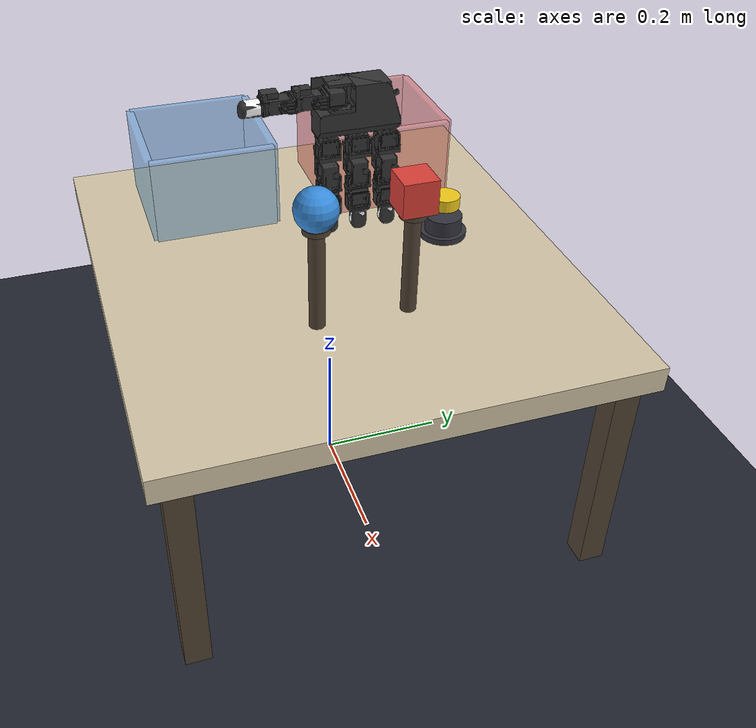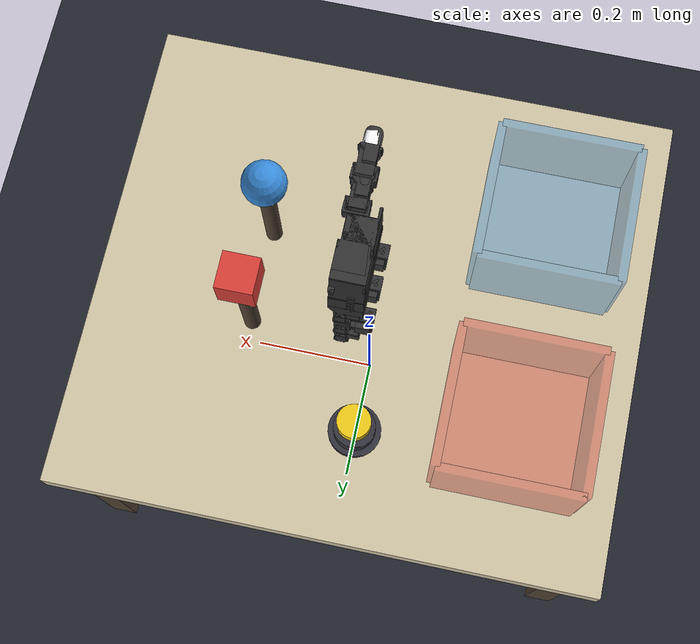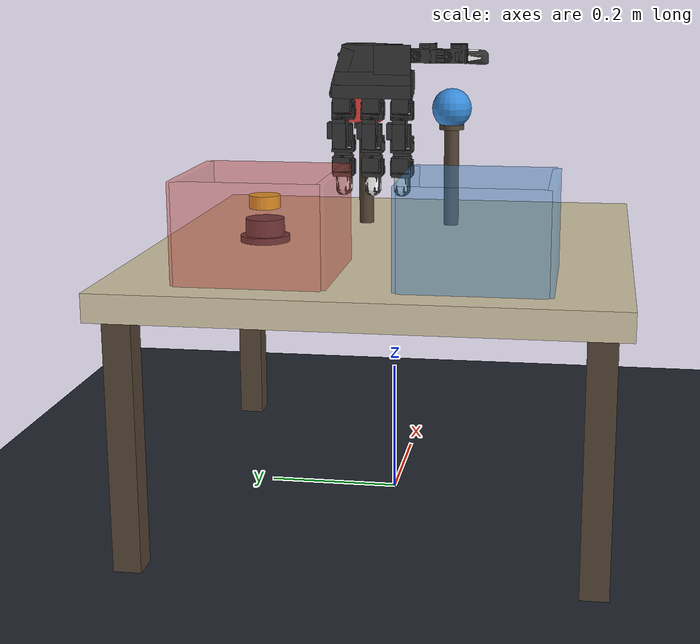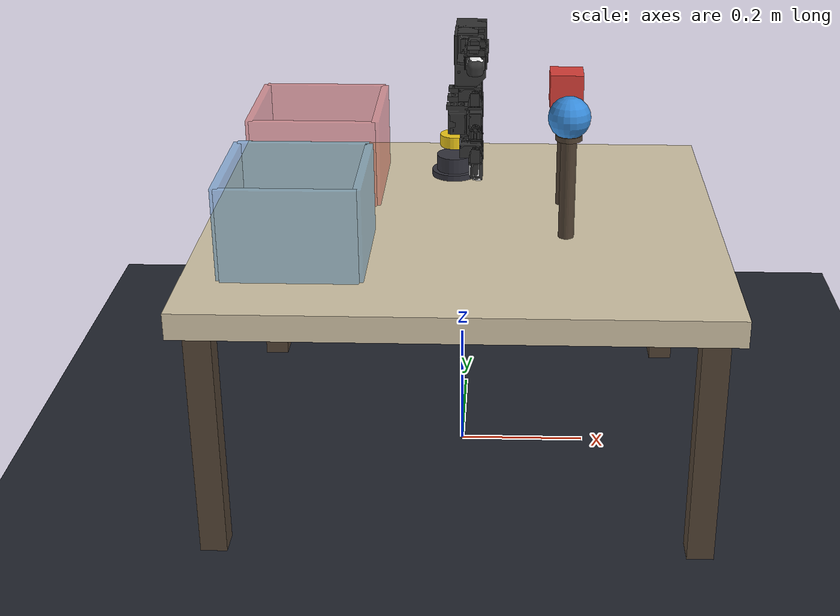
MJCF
<mujoco model="dexsuite_scene">
  <!-- LEAP right hand on a 6-DOF actuated wrist (compiler + option live here) -->
  <include file="leap_hand/leap_rh_wrist.xml"/>

  <statistic center="0 0 0.35" extent="1.0"/>

  <visual>
    <headlight diffuse="0.5 0.5 0.5" ambient="0.35 0.35 0.35" specular="0.1 0.1 0.1"/>
    <rgba haze="0.15 0.25 0.35 1"/>
    <global azimuth="140" elevation="-22" offwidth="1280" offheight="720"/>
    <quality shadowsize="4096"/>
    <map force="0.005"/>
  </visual>

  <asset>
    <texture type="skybox" builtin="gradient" rgb1="0.45 0.6 0.78" rgb2="0.05 0.07 0.12"
      width="512" height="3072"/>
    <texture type="2d" name="floortex" builtin="checker" mark="edge" rgb1="0.16 0.18 0.22"
      rgb2="0.10 0.11 0.14" markrgb="0.55 0.6 0.7" width="300" height="300"/>
    <material name="floormat" texture="floortex" texuniform="true" texrepeat="6 6" reflectance="0.12"/>
    <material name="tabletop" rgba="0.83 0.78 0.66 1" reflectance="0.05"/>
    <material name="tableleg" rgba="0.32 0.26 0.20 1"/>
    <material name="cubemat" rgba="0.86 0.25 0.22 1"/>
    <material name="ballmat" rgba="0.22 0.55 0.86 1"/>
    <material name="bin1mat" rgba="0.86 0.30 0.26 0.45"/>
    <material name="bin2mat" rgba="0.26 0.58 0.86 0.45"/>
    <material name="btn_base" rgba="0.20 0.20 0.24 1"/>
    <material name="btn_cap" rgba="0.95 0.80 0.10 1"/>
  </asset>

  <worldbody>
    <light name="key" pos="0.4 0.2 1.3" dir="-0.3 -0.15 -1" directional="false"
      diffuse="0.7 0.7 0.7" specular="0.2 0.2 0.2"/>
    <light name="fill" pos="-0.5 -0.4 1.1" dir="0.4 0.3 -1" directional="false"
      diffuse="0.35 0.35 0.4"/>
    <geom name="floor" size="0 0 0.05" type="plane" material="floormat" pos="0 0 0"/>

    <!-- table: top surface at z = 0.40 -->
    <body name="table" pos="0 0 0">
      <geom name="table_top" type="box" size="0.40 0.36 0.02" pos="0 0 0.38"
        material="tabletop" friction="0.9 0.02 0.001"/>
      <geom name="leg1" type="box" size="0.02 0.02 0.19" pos="0.36 0.32 0.19" material="tableleg"/>
      <geom name="leg2" type="box" size="0.02 0.02 0.19" pos="-0.36 0.32 0.19" material="tableleg"/>
      <geom name="leg3" type="box" size="0.02 0.02 0.19" pos="0.36 -0.32 0.19" material="tableleg"/>
      <geom name="leg4" type="box" size="0.02 0.02 0.19" pos="-0.36 -0.32 0.19" material="tableleg"/>
    </body>

    <!-- scene camera: front-3/4 view of the workspace -->
    <camera name="scene_cam" pos="0.62 -0.62 0.92" xyaxes="0.7 0.7 0 -0.32 0.32 0.9"/>
    <camera name="front_cam" pos="0.0 -0.85 0.70" xyaxes="1 0 0 0 0.5 0.86"/>
    <!-- tracking close-up: auto-aims at the palm as the hand moves -->
    <camera name="track_cam" pos="0.30 -0.40 0.78" mode="targetbody" target="palm"/>

    <!-- pick fixtures: thin pedestals raise parts to manipulator height -->
    <body name="ped1" pos="0.16 0.07 0">
      <geom name="ped1_post" type="cylinder" size="0.012 0.078" pos="0 0 0.478" material="tableleg"/>
      <geom name="ped1_cap" type="cylinder" size="0.02 0.004" pos="0 0 0.56" material="tableleg"/>
    </body>
    <body name="ped2" pos="0.16 -0.07 0">
      <geom name="ped2_post" type="cylinder" size="0.012 0.078" pos="0 0 0.478" material="tableleg"/>
      <geom name="ped2_cap" type="cylinder" size="0.02 0.004" pos="0 0 0.56" material="tableleg"/>
    </body>

    <!-- manipuland 1: cube (rounded box) resting on pedestal 1 -->
    <body name="cube" pos="0.16 0.07 0.594">
      <freejoint name="cube_free"/>
      <geom name="cube_geom" type="box" size="0.026 0.026 0.026" material="cubemat"
        friction="1.3 0.08 0.004" condim="4" mass="0.045" solimp="0.99 0.995 0.001"/>
    </body>

    <!-- manipuland 2: ball (hand-scaled sphere) resting on pedestal 2 -->
    <body name="ball" pos="0.16 -0.07 0.59">
      <freejoint name="ball_free"/>
      <geom name="ball_geom" type="sphere" size="0.032" material="ballmat"
        friction="1.4 0.08 0.004" condim="4" mass="0.046"/>
    </body>

    <!-- target bin 1 (cube): deep open tray -->
    <body name="bin1" pos="-0.24 0.15 0.40">
      <geom name="bin1_floor" type="box" size="0.10 0.10 0.005" pos="0 0 0.005" material="bin1mat"/>
      <geom name="bin1_wxp" type="box" size="0.006 0.10 0.07" pos="0.10 0 0.07" material="bin1mat"/>
      <geom name="bin1_wxn" type="box" size="0.006 0.10 0.07" pos="-0.10 0 0.07" material="bin1mat"/>
      <geom name="bin1_wyp" type="box" size="0.10 0.006 0.07" pos="0 0.10 0.07" material="bin1mat"/>
      <geom name="bin1_wyn" type="box" size="0.10 0.006 0.07" pos="0 -0.10 0.07" material="bin1mat"/>
      <site name="bin1_site" pos="0 0 0.03" size="0.07" rgba="0 0 0 0"/>
    </body>

    <!-- target bin 2 (ball): deep open tray -->
    <body name="bin2" pos="-0.24 -0.15 0.40">
      <geom name="bin2_floor" type="box" size="0.10 0.10 0.005" pos="0 0 0.005" material="bin2mat"/>
      <geom name="bin2_wxp" type="box" size="0.006 0.10 0.07" pos="0.10 0 0.07" material="bin2mat"/>
      <geom name="bin2_wxn" type="box" size="0.006 0.10 0.07" pos="-0.10 0 0.07" material="bin2mat"/>
      <geom name="bin2_wyp" type="box" size="0.10 0.006 0.07" pos="0 0.10 0.07" material="bin2mat"/>
      <geom name="bin2_wyn" type="box" size="0.10 0.006 0.07" pos="0 -0.10 0.07" material="bin2mat"/>
      <site name="bin2_site" pos="0 0 0.03" size="0.07" rgba="0 0 0 0"/>
    </body>

    <!-- press button: spring-loaded plunger with real travel clearance -->
    <body name="button" pos="-0.02 0.20 0.40">
      <geom name="btn_base" type="cylinder" size="0.038 0.005" pos="0 0 0.005" material="btn_base"/>
      <geom name="btn_rim" type="cylinder" size="0.030 0.018" pos="0 0 0.018" material="btn_base"/>
      <body name="btn_cap" pos="0 0 0.062">
        <joint name="btn_slide" type="slide" axis="0 0 1" range="-0.030 0.0"
          stiffness="90" damping="2.5" springref="0.0"/>
        <inertial pos="0 0 0" mass="0.015" diaginertia="4e-6 4e-6 4e-6"/>
        <geom name="btn_cap_geom" type="cylinder" size="0.024 0.010" material="btn_cap"
          friction="1.0 0.02 0.001"/>
      </body>
    </body>
  </worldbody>

  <sensor>
    <!-- task-state sensing: button depression + manipuland poses -->
    <jointpos name="btn_pos" joint="btn_slide"/>
    <framepos name="cube_pos" objtype="body" objname="cube"/>
    <framepos name="ball_pos" objtype="body" objname="ball"/>
  </sensor>
</mujoco>

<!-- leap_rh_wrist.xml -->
<mujoco model="leap_rh_wrist">
  <compiler angle="radian" meshdir="leap_hand/assets/" />
  <option integrator="implicitfast" cone="elliptic" impratio="100" />
  <asset>
    <material name="black" rgba="0.2 0.2 0.2 1" />
    <material name="white" rgba="1 1 1 1" />
    <mesh name="palm" file="palm_right.obj" />
    <mesh name="base" file="base.obj" />
    <mesh name="proximal" file="proximal.obj" />
    <mesh name="medial" file="medial.obj" />
    <mesh name="distal" file="distal.obj" />
    <mesh name="tip" file="tip.obj" />
    <mesh name="thumb_base" file="thumb_base.obj" />
    <mesh name="thumb_proximal" file="thumb_proximal.obj" />
    <mesh name="thumb_distal" file="thumb_distal.obj" />
    <mesh name="thumb_tip" file="thumb_tip.obj" />
  </asset>
  <default>
    <geom solimp="0.999 0.999 0.001 0.0001 1" solref="0.0001 1" friction=".2" />
    <position kp="3.0" kv="0.01" />
    <joint damping="0.03" frictionloss="0.001" />
    <default class="visual">
      <geom group="1" type="mesh" contype="0" conaffinity="0" density="0" material="black" />
    </default>
    <default class="collision">
      <geom material="black" />
    </default>
    <default class="tip">
      <geom type="mesh" mesh="tip" friction="0.5" material="white" />
    </default>
    <default class="thumb_tip">
      <geom type="mesh" mesh="thumb_tip" friction="0.5" material="white" />
    </default>
    <default class="mcp">
      <joint pos="0 0 0" axis="0 0 -1" limited="true" range="-0.314 2.23" />
      <position ctrlrange="-0.314 2.23" />
    </default>
    <default class="rot">
      <joint pos="0 0 0" axis="0 0 -1" limited="true" range="-1.047 1.047" />
      <position ctrlrange="-1.047 1.047" />
    </default>
    <default class="pip">
      <joint pos="0 0 0" axis="0 0 -1" limited="true" range="-0.506 1.885" />
      <position ctrlrange="-0.506 1.885" />
    </default>
    <default class="dip">
      <joint pos="0 0 0" axis="0 0 -1" limited="true" range="-0.366 2.042" />
      <position ctrlrange="-0.366 2.042" />
    </default>
    <default class="thumb_cmc">
      <joint pos="0 0 0" axis="0 0 -1" limited="true" range="-0.349 2.094" />
      <position ctrlrange="-0.349 2.094" />
    </default>
    <default class="thumb_axl">
      <joint pos="0 0 0" axis="0 0 -1" limited="true" range="-0.349 2.094" />
      <position ctrlrange="-0.349 2.094" />
    </default>
    <default class="thumb_mcp">
      <joint pos="0 0 0" axis="0 0 -1" limited="true" range="-0.47 2.443" />
      <position ctrlrange="-0.47 2.443" />
    </default>
    <default class="thumb_ipl">
      <joint pos="0 0 0" axis="0 0 -1" limited="true" range="-1.34 1.88" />
      <position ctrlrange="-1.34 1.88" />
    </default>
  </default>
  <contact>
    <exclude body1="palm" body2="if_bs" />
    <exclude body1="palm" body2="mf_bs" />
    <exclude body1="palm" body2="rf_bs" />
    <exclude body1="palm" body2="th_mp" />
    <exclude body1="palm" body2="if_px" />
    <exclude body1="palm" body2="mf_px" />
    <exclude body1="palm" body2="rf_px" />
    <exclude body1="palm" body2="th_bs" />
    <exclude body1="palm" body2="if_md" />
    <exclude body1="palm" body2="mf_md" />
    <exclude body1="palm" body2="rf_md" />
    <exclude body1="palm" body2="th_px" />
    <exclude body1="if_bs" body2="mf_bs" />
    <exclude body1="if_bs" body2="rf_bs" />
    <exclude body1="mf_bs" body2="rf_bs" />
    <exclude body1="th_mp" body2="if_bs" />
    <exclude body1="th_mp" body2="mf_bs" />
    <exclude body1="th_mp" body2="rf_bs" />
  </contact>
  <actuator>
    <position name="wrist_x_act" joint="wrist_x" kp="4000" kv="150" ctrlrange="-0.45 0.45" />
    <position name="wrist_y_act" joint="wrist_y" kp="4000" kv="150" ctrlrange="-0.45 0.45" />
    <position name="wrist_z_act" joint="wrist_z" kp="5000" kv="200" ctrlrange="-0.30 0.18" />
    <position name="wrist_yaw_act" joint="wrist_yaw" kp="600" kv="35" ctrlrange="-3.1416 3.1416" />
    <position name="wrist_pitch_act" joint="wrist_pitch" kp="600" kv="35" ctrlrange="-1.5708 1.5708" />
    <position name="wrist_roll_act" joint="wrist_roll" kp="600" kv="35" ctrlrange="-3.1416 3.1416" />
    <position name="if_mcp_act" joint="if_mcp" class="mcp" />
    <position name="if_rot_act" joint="if_rot" class="rot" />
    <position name="if_pip_act" joint="if_pip" class="pip" />
    <position name="if_dip_act" joint="if_dip" class="dip" />
    <position name="mf_mcp_act" joint="mf_mcp" class="mcp" />
    <position name="mf_rot_act" joint="mf_rot" class="rot" />
    <position name="mf_pip_act" joint="mf_pip" class="pip" />
    <position name="mf_dip_act" joint="mf_dip" class="dip" />
    <position name="rf_mcp_act" joint="rf_mcp" class="mcp" />
    <position name="rf_rot_act" joint="rf_rot" class="rot" />
    <position name="rf_pip_act" joint="rf_pip" class="pip" />
    <position name="rf_dip_act" joint="rf_dip" class="dip" />
    <position name="th_cmc_act" joint="th_cmc" class="thumb_cmc" />
    <position name="th_axl_act" joint="th_axl" class="thumb_axl" />
    <position name="th_mcp_act" joint="th_mcp" class="thumb_mcp" />
    <position name="th_ipl_act" joint="th_ipl" class="thumb_ipl" />
  </actuator>
  <sensor>
    <jointpos name="if_mcp_sensor" joint="if_mcp" />
    <jointpos name="if_rot_sensor" joint="if_rot" />
    <jointpos name="if_pip_sensor" joint="if_pip" />
    <jointpos name="if_dip_sensor" joint="if_dip" />
    <jointpos name="mf_mcp_sensor" joint="mf_mcp" />
    <jointpos name="mf_rot_sensor" joint="mf_rot" />
    <jointpos name="mf_pip_sensor" joint="mf_pip" />
    <jointpos name="mf_dip_sensor" joint="mf_dip" />
    <jointpos name="rf_mcp_sensor" joint="rf_mcp" />
    <jointpos name="rf_rot_sensor" joint="rf_rot" />
    <jointpos name="rf_pip_sensor" joint="rf_pip" />
    <jointpos name="rf_dip_sensor" joint="rf_dip" />
    <jointpos name="th_cmc_sensor" joint="th_cmc" />
    <jointpos name="th_axl_sensor" joint="th_axl" />
    <jointpos name="th_mcp_sensor" joint="th_mcp" />
    <jointpos name="th_ipl_sensor" joint="th_ipl" />
    <touch name="if_touch" site="if_tip_site" />
    <touch name="mf_touch" site="mf_tip_site" />
    <touch name="rf_touch" site="rf_tip_site" />
    <touch name="th_touch" site="th_tip_site" />
    <force name="wrist_force" site="palm_site" />
    <torque name="wrist_torque" site="palm_site" />
    <accelerometer name="palm_acc" site="palm_site" />
    <gyro name="palm_gyro" site="palm_site" />
    <framepos name="palm_pos" objtype="site" objname="palm_site" />
    <framequat name="palm_quat" objtype="site" objname="palm_site" />
  </sensor>
  <worldbody>
    <body name="wrist_x" pos="0 0 0.6">
      <inertial pos="0 0 0" mass="0.05" diaginertia="1e-4 1e-4 1e-4" />
      <joint name="wrist_x" type="slide" axis="1 0 0" range="-0.45 0.45" damping="50" armature="1.0" />
      <body name="wrist_y">
        <inertial pos="0 0 0" mass="0.05" diaginertia="1e-4 1e-4 1e-4" />
        <joint name="wrist_y" type="slide" axis="0 1 0" range="-0.45 0.45" damping="50" armature="1.0" />
        <body name="wrist_z">
          <inertial pos="0 0 0" mass="0.05" diaginertia="1e-4 1e-4 1e-4" />
          <joint name="wrist_z" type="slide" axis="0 0 1" range="-0.30 0.18" damping="50" armature="1.0" />
          <body name="wrist_yaw">
            <inertial pos="0 0 0" mass="0.05" diaginertia="1e-4 1e-4 1e-4" />
            <joint name="wrist_yaw" type="hinge" axis="0 0 1" range="-3.1416 3.1416" damping="5" armature="0.2" />
            <body name="wrist_pitch">
              <inertial pos="0 0 0" mass="0.05" diaginertia="1e-4 1e-4 1e-4" />
              <joint name="wrist_pitch" type="hinge" axis="0 1 0" range="-1.5708 1.5708" damping="5" armature="0.2" />
              <body name="wrist_roll">
                <inertial pos="0 0 0" mass="0.05" diaginertia="1e-4 1e-4 1e-4" />
                <joint name="wrist_roll" type="hinge" axis="1 0 0" range="-3.1416 3.1416" damping="5" armature="0.2" />
                <body name="palm" pos="0 0 0" quat="0 0.70710678 0 -0.70710678">
                  <site name="palm_site" pos="-0.03 -0.04 -0.02" size="0.005" rgba="0 1 0 0.0" />
                  <inertial pos="-0.049542 -0.042914 -0.010227" quat="0.565586 0.427629 -0.574956 0.408254" mass="0.237" diaginertia="0.000407345 0.000304759 0.000180736" />
                  <geom name="palm_visual" pos="-0.02 0.02575 -0.0347" quat="1 0 0 0" class="visual" mesh="palm" />
                  <geom name="palm_collision_1" size="0.011 0.013 0.017" pos="-0.009 0.008 -0.011" type="box" class="collision" />
                  <geom name="palm_collision_2" size="0.011 0.013 0.017" pos="-0.009 -0.037 -0.011" type="box" class="collision" />
                  <geom name="palm_collision_3" size="0.011 0.013 0.017" pos="-0.009 -0.082 -0.011" type="box" class="collision" />
                  <geom name="palm_collision_4" size="0.029 0.01 0.023" pos="-0.066 -0.078 -0.0115" quat="0.989016 0 0 -0.147806" type="box" class="collision" />
                  <geom name="palm_collision_5" size="0.01 0.06 0.015" pos="-0.03 -0.035 -0.003" type="box" class="collision" />
                  <geom name="palm_collision_6" size="0.005 0.06 0.01" pos="-0.032 -0.035 -0.024" quat="0.923956 0 0.382499 0" type="box" class="collision" />
                  <geom name="palm_collision_7" size="0.012 0.058 0.023" pos="-0.048 -0.033 -0.0115" type="box" class="collision" />
                  <geom name="palm_collision_8" size="0.022 0.026 0.023" pos="-0.078 -0.053 -0.0115" type="box" class="collision" />
                  <geom name="palm_collision_9" size="0.002 0.018 0.017" pos="-0.098 -0.009 -0.006" type="box" class="collision" />
                  <geom name="palm_collision_10" size="0.022 0.028 0.002" pos="-0.078 -0.003 0.01" type="box" class="collision" />
                  <body name="if_bs" pos="-0.007 0.023 -0.0187" quat="0.500003 0.5 0.5 -0.499997">
                    <inertial pos="-0.022516 0.033882 0.016359" quat="0.388092 0.677951 -0.247713 0.573067" mass="0.044" diaginertia="1.74972e-05 1.61504e-05 7.21342e-06" />
                    <joint name="if_mcp" class="mcp" />
                    <geom name="if_bs_visual" pos="0.0084 0.0077 0.01465" quat="1 0 0 0" class="visual" mesh="base" />
                    <geom name="if_bs_collision_1" size="0.01 0.003 0.017" pos="0 0.018 0.0147" type="box" class="collision" />
                    <geom name="if_bs_collision_2" size="0.014 0.02 0.01" pos="-0.027 0.042 0.015" type="box" class="collision" />
                    <geom name="if_bs_collision_3" size="0.017 0.003 0.01" pos="-0.0262 0.02 0.0146" type="box" class="collision" />
                    <geom name="if_bs_collision_4" size="0.01 0.012 0.004" pos="-0.0295 0.035 0.029" type="box" class="collision" />
                    <geom name="if_bs_collision_5" size="0.007 0.01 0.002" pos="0 0.005 0.03" type="box" class="collision" />
                    <geom name="if_bs_collision_6" size="0.007 0.01 0.002" pos="0 0.005 -0.001" type="box" class="collision" />
                    <body name="if_px" pos="-0.0122 0.0381 0.0145" quat="0.500003 -0.5 -0.499997 0.5">
                      <inertial pos="0.0075 -0.0002 -0.011" quat="0 0.707107 0 0.707107" mass="0.032" diaginertia="4.8853e-06 4.3733e-06 3.0933e-06" />
                      <joint name="if_rot" class="rot" />
                      <geom name="if_px_visual" pos="0.0096 0.0002 0.0007" quat="0.500003 -0.5 -0.5 -0.499997" class="visual" mesh="proximal" />
                      <geom name="if_px_collision" size="0.017 0.013 0.011" pos="0.0075 -0.0002 -0.011" type="box" class="collision" />
                      <body name="if_md" pos="0.015 0.0143 -0.013" quat="0.500003 0.5 -0.5 0.499997">
                        <inertial pos="0.0054215 -0.029148 0.015" quat="0.687228 0.687228 0.166487 0.166487" mass="0.037" diaginertia="8.28004e-06 8.1598e-06 5.39516e-06" />
                        <joint name="if_pip" class="pip" />
                        <geom name="if_md_visual" pos="0.0211 -0.0084 0.0097" quat="2.67949e-08 -1 0 0" class="visual" mesh="medial" />
                        <geom name="if_md_collision_1" size="0.008 0.003 0.013" pos="0 -0.02 0.015" type="box" class="collision" />
                        <geom name="if_md_collision_2" size="0.01 0.002 0.017" pos="0 -0.016 0.015" type="box" class="collision" />
                        <geom name="if_md_collision_3" size="0.007 0.01 0.002" pos="0 -0.0045 0.03" type="box" class="collision" />
                        <geom name="if_md_collision_4" size="0.007 0.01 0.002" pos="0 -0.0045 0" type="box" class="collision" />
                        <geom name="if_md_collision_5" size="0.017 0.011 0.013" pos="0.0075 -0.035 0.015" type="box" class="collision" />
                        <body name="if_ds" pos="0 -0.0361 0.0002">
                          <inertial pos="-0.0008794 -0.027019 0.014594" quat="0.702905 0.710643 -0.0212937 -0.0214203" mass="0.016" diaginertia="3.71863e-06 3.02396e-06 1.6518e-06" />
                          <joint name="if_dip" class="dip" />
                          <geom name="if_ds_visual" pos="0.0132 -0.0061 0.0144" quat="2.67949e-08 1 0 0" class="visual" mesh="distal" />
                          <geom name="if_ds_collision_1" size="0.01 0.003 0.015" pos="0 -0.017 0.015" type="box" class="collision" />
                          <geom name="if_ds_collision_2" size="0.007 0.011 0.002" pos="0 -0.006 0.03" type="box" class="collision" />
                          <geom name="if_ds_collision_3" size="0.007 0.011 0.002" pos="0 -0.006 -0.001" type="box" class="collision" />
                          <geom name="if_tip" class="tip" />
                          <site name="if_tip_site" type="sphere" size="0.018" pos="0 -0.033 0.015" rgba="1 0.4 0 0.0" />
                        </body>
                      </body>
                    </body>
                  </body>
                  <body name="mf_bs" pos="-0.0071 -0.0224 -0.0187" quat="0.500003 0.5 0.5 -0.499997">
                    <inertial pos="-0.022516 0.033882 0.016359" quat="0.388092 0.677951 -0.247713 0.573067" mass="0.044" diaginertia="1.74972e-05 1.61504e-05 7.21342e-06" />
                    <joint name="mf_mcp" class="mcp" />
                    <geom name="mf_bs_visual" pos="0.0084 0.0077 0.01465" quat="1 0 0 0" class="visual" mesh="base" />
                    <geom name="mf_bs_collision_1" size="0.01 0.003 0.017" pos="0 0.018 0.0147" type="box" class="collision" />
                    <geom name="mf_bs_collision_2" size="0.014 0.02 0.01" pos="-0.027 0.042 0.015" type="box" class="collision" />
                    <geom name="mf_bs_collision_3" size="0.017 0.003 0.01" pos="-0.0262 0.02 0.0146" type="box" class="collision" />
                    <geom name="mf_bs_collision_4" size="0.01 0.012 0.004" pos="-0.0295 0.035 0.029" type="box" class="collision" />
                    <geom name="mf_bs_collision_5" size="0.007 0.01 0.002" pos="0 0.005 0.03" type="box" class="collision" />
                    <geom name="mf_bs_collision_6" size="0.007 0.01 0.002" pos="0 0.005 -0.001" type="box" class="collision" />
                    <body name="mf_px" pos="-0.0122 0.0381 0.0145" quat="0.500003 -0.5 -0.499997 0.5">
                      <inertial pos="0.0075 -0.0002 -0.011" quat="0 0.707107 0 0.707107" mass="0.032" diaginertia="4.8853e-06 4.3733e-06 3.0933e-06" />
                      <joint name="mf_rot" class="rot" />
                      <geom name="mf_px_visual" pos="0.0096 0.0003 0.0007" quat="0.500003 -0.5 -0.5 -0.499997" class="visual" mesh="proximal" />
                      <geom name="mf_px_collision" size="0.017 0.013 0.011" pos="0.0075 -0.0002 -0.011" type="box" class="collision" />
                      <body name="mf_md" pos="0.015 0.0143 -0.013" quat="0.500003 0.5 -0.5 0.499997">
                        <inertial pos="0.0054215 -0.029148 0.015" quat="0.687228 0.687228 0.166487 0.166487" mass="0.037" diaginertia="8.28004e-06 8.1598e-06 5.39516e-06" />
                        <joint name="mf_pip" class="pip" />
                        <geom name="mf_md_visual" pos="0.0211 -0.0084 0.0097" quat="1.32679e-06 -1 0 0" class="visual" mesh="medial" />
                        <geom name="mf_md_collision_1" size="0.008 0.003 0.013" pos="0 -0.02 0.015" type="box" class="collision" />
                        <geom name="mf_md_collision_2" size="0.01 0.002 0.017" pos="0 -0.016 0.015" type="box" class="collision" />
                        <geom name="mf_md_collision_3" size="0.007 0.01 0.002" pos="0 -0.0045 0.03" type="box" class="collision" />
                        <geom name="mf_md_collision_4" size="0.007 0.01 0.002" pos="0 -0.0045 0" type="box" class="collision" />
                        <geom name="mf_md_collision_5" size="0.017 0.011 0.013" pos="0.0075 -0.035 0.015" type="box" class="collision" />
                        <body name="mf_ds" pos="0 -0.0361 0.0002">
                          <inertial pos="-0.0008794 -0.027019 0.014594" quat="0.702905 0.710643 -0.0212937 -0.0214203" mass="0.016" diaginertia="3.71863e-06 3.02396e-06 1.6518e-06" />
                          <joint name="mf_dip" class="dip" />
                          <geom name="mf_ds_visual" pos="0.0132 -0.0061 0.0145" quat="1.32679e-06 1 0 0" class="visual" mesh="distal" />
                          <geom name="mf_ds_collision_1" size="0.01 0.003 0.015" pos="0 -0.017 0.015" type="box" class="collision" />
                          <geom name="mf_ds_collision_2" size="0.007 0.011 0.002" pos="0 -0.006 0.03" type="box" class="collision" />
                          <geom name="mf_ds_collision_3" size="0.007 0.011 0.002" pos="0 -0.006 -0.001" type="box" class="collision" />
                          <geom name="mf_tip" class="tip" />
                          <site name="mf_tip_site" type="sphere" size="0.018" pos="0 -0.033 0.015" rgba="1 0.4 0 0.0" />
                        </body>
                      </body>
                    </body>
                  </body>
                  <body name="rf_bs" pos="-0.00709 -0.0678 -0.0187" quat="0.500003 0.5 0.5 -0.499997">
                    <inertial pos="-0.022516 0.033882 0.016359" quat="0.388092 0.677951 -0.247713 0.573067" mass="0.044" diaginertia="1.74972e-05 1.61504e-05 7.21342e-06" />
                    <joint name="rf_mcp" class="mcp" />
                    <geom name="rf_bs_visual" pos="0.0084 0.0077 0.01465" quat="1 0 0 0" class="visual" mesh="base" />
                    <geom name="rf_bs_collision_1" size="0.01 0.003 0.017" pos="0 0.018 0.0147" type="box" class="collision" />
                    <geom name="rf_bs_collision_2" size="0.014 0.02 0.01" pos="-0.027 0.042 0.015" type="box" class="collision" />
                    <geom name="rf_bs_collision_3" size="0.017 0.003 0.01" pos="-0.0262 0.02 0.0146" type="box" class="collision" />
                    <geom name="rf_bs_collision_4" size="0.01 0.012 0.004" pos="-0.0295 0.035 0.029" type="box" class="collision" />
                    <geom name="rf_bs_collision_5" size="0.007 0.01 0.002" pos="0 0.005 0.03" type="box" class="collision" />
                    <geom name="rf_bs_collision_6" size="0.007 0.01 0.002" pos="0 0.005 -0.001" type="box" class="collision" />
                    <body name="rf_px" pos="-0.0122 0.0381 0.0145" quat="0.500003 -0.5 -0.499997 0.5">
                      <inertial pos="0.0075 -0.0002 -0.011" quat="0 0.707107 0 0.707107" mass="0.032" diaginertia="4.8853e-06 4.3733e-06 3.0933e-06" />
                      <joint name="rf_rot" class="rot" />
                      <geom name="rf_px_visual" pos="0.0096 0.0003 0.0007" quat="0.500003 -0.5 -0.5 -0.499997" class="visual" mesh="proximal" />
                      <geom name="rf_px_collision" size="0.017 0.013 0.011" pos="0.0075 -0.0002 -0.011" type="box" class="collision" />
                      <body name="rf_md" pos="0.015 0.0143 -0.013" quat="0.500003 0.5 -0.5 0.499997">
                        <inertial pos="0.0054215 -0.029148 0.015" quat="0.687228 0.687228 0.166487 0.166487" mass="0.037" diaginertia="8.28004e-06 8.1598e-06 5.39516e-06" />
                        <joint name="rf_pip" class="pip" />
                        <geom name="rf_md_visual" pos="0.0211 -0.0084 0.0097" quat="1.32679e-06 -1 0 0" class="visual" mesh="medial" />
                        <geom name="rf_md_collision_1" size="0.008 0.003 0.013" pos="0 -0.02 0.015" type="box" class="collision" />
                        <geom name="rf_md_collision_2" size="0.01 0.002 0.017" pos="0 -0.016 0.015" type="box" class="collision" />
                        <geom name="rf_md_collision_3" size="0.007 0.01 0.002" pos="0 -0.0045 0.03" type="box" class="collision" />
                        <geom name="rf_md_collision_4" size="0.007 0.01 0.002" pos="0 -0.0045 0" type="box" class="collision" />
                        <geom name="rf_md_collision_5" size="0.017 0.011 0.013" pos="0.0075 -0.035 0.015" type="box" class="collision" />
                        <body name="rf_ds" pos="0 -0.03609 0.0002">
                          <inertial pos="-0.0008794 -0.027019 0.014594" quat="0.702905 0.710643 -0.0212937 -0.0214203" mass="0.016" diaginertia="3.71863e-06 3.02396e-06 1.6518e-06" />
                          <joint name="rf_dip" class="dip" />
                          <geom name="rf_ds_visual" pos="0.0132 -0.0061 0.0145" quat="1.32679e-06 1 0 0" class="visual" mesh="distal" />
                          <geom name="rf_ds_collision_1" size="0.01 0.003 0.015" pos="0 -0.017 0.015" type="box" class="collision" />
                          <geom name="rf_ds_collision_2" size="0.007 0.011 0.002" pos="0 -0.006 0.03" type="box" class="collision" />
                          <geom name="rf_ds_collision_3" size="0.007 0.011 0.002" pos="0 -0.006 -0.001" type="box" class="collision" />
                          <geom name="rf_tip" class="tip" />
                          <site name="rf_tip_site" type="sphere" size="0.018" pos="0 -0.033 0.015" rgba="1 0.4 0 0.0" />
                        </body>
                      </body>
                    </body>
                  </body>
                  <body name="th_mp" pos="-0.0693 -0.0012 -0.0216" quat="0.707109 0 0.707105 0">
                    <inertial pos="0.0075 -0.0002 -0.011" quat="0 0.707107 0 0.707107" mass="0.032" diaginertia="4.8853e-06 4.3733e-06 3.0933e-06" />
                    <joint name="th_cmc" class="thumb_cmc" />
                    <geom name="th_mp_visual" pos="-0.0053 0.0003 0.00078" quat="0.500003 -0.5 -0.5 -0.499997" class="visual" mesh="proximal" />
                    <geom name="th_mp_collision" size="0.017 0.013 0.011" pos="-0.0075 -0.0002 -0.011" type="box" class="collision" />
                    <body name="th_bs" pos="0 0.0143 -0.013" quat="0.500003 0.5 -0.5 0.499997">
                      <inertial pos="0 0 -0.0070806" quat="0.707107 0.707107 0 0" mass="0.003" diaginertia="6.1932e-07 5.351e-07 2.1516e-07" />
                      <joint name="th_axl" class="thumb_axl" />
                      <geom name="th_bs_visual" pos="0.01196 0 -0.0158" quat="0.707109 0.707105 0 0" class="visual" mesh="thumb_base" />
                      <geom name="th_bs_collision_1" size="0.009 0.0165 0.002" pos="0 0 -0.0015" type="box" class="collision" />
                      <geom name="th_bs_collision_2" size="0.007 0.002 0.01" pos="0 -0.015 -0.013" type="box" class="collision" />
                      <geom name="th_bs_collision_3" size="0.007 0.002 0.01" pos="0 0.015 -0.013" type="box" class="collision" />
                      <body name="th_px" pos="0 0.0145 -0.017" quat="0.707109 -0.707105 0 0">
                        <inertial pos="-0.0020593 0.015912 -0.013733" quat="0.698518 0.697382 -0.104933 0.121324" mass="0.038" diaginertia="9.87104e-06 9.32653e-06 4.36203e-06" />
                        <joint name="th_mcp" class="thumb_mcp" />
                        <geom name="th_px_visual" pos="0.0439 0.0579 -0.0086" quat="1 0 0 0" class="visual" mesh="thumb_proximal" />
                        <geom name="th_px_collision_1" size="0.01 0.02 0.012" pos="0 0.0105 -0.014" type="box" class="collision" />
                        <geom name="th_px_collision_2" size="0.01 0.002 0.016" pos="0 0.031 -0.015" type="box" class="collision" />
                        <geom name="th_px_collision_3" size="0.007 0.01 0.002" pos="0 0.042 0.001" type="box" class="collision" />
                        <geom name="th_px_collision_4" size="0.007 0.01 0.002" pos="0 0.042 -0.029" type="box" class="collision" />
                        <geom name="th_px_collision_5" size="0.005 0.012 0.009" pos="-0.0135 0.0175 -0.011656" type="box" class="collision" />
                        <body name="th_ds" pos="0 0.0466 0.0002" quat="1.32679e-06 0 0 1">
                          <inertial pos="0.00096191 -0.024203 -0.014419" quat="0.35287 0.311272 -0.632839 0.614904" mass="0.049" diaginertia="2.08591e-05 2.0402e-05 4.71335e-06" />
                          <joint name="th_ipl" class="thumb_ipl" />
                          <geom name="th_ds_visual" pos="0.0625 0.0784 0.0489" quat="1 0 0 0" class="visual" mesh="thumb_distal" />
                          <geom name="th_ds_collision_1" size="0.01 0.018 0.012" pos="0 -0.0085 -0.015" type="box" class="collision" />
                          <geom name="th_ds_collision_2" size="0.01 0.002 0.015" pos="0 -0.029 -0.014" type="box" class="collision" />
                          <geom name="th_ds_collision_3" size="0.004 0.012 0.009" pos="0.015 -0.0175 -0.0115" type="box" class="collision" />
                          <geom name="th_tip" class="thumb_tip" />
                          <site name="th_tip_site" type="sphere" size="0.018" pos="0 -0.033 -0.015" rgba="1 0.4 0 0.0" />
                        </body>
                      </body>
                    </body>
                  </body>
                </body>
                <camera name="wrist_cam" pos="-0.03 -0.04 0.06" mode="fixed" fovy="58" euler="3.14159 0 0" />
              </body>
            </body>
          </body>
        </body>
      </body>
    </body>
  </worldbody>
</mujoco>
